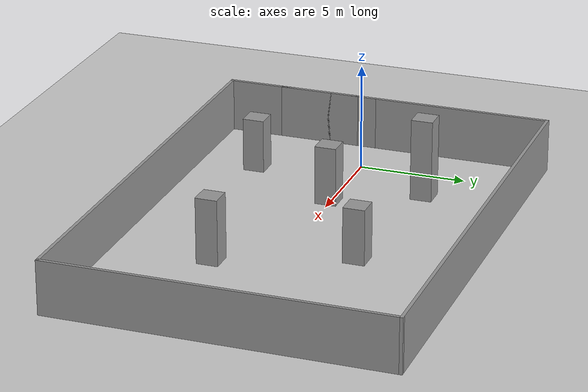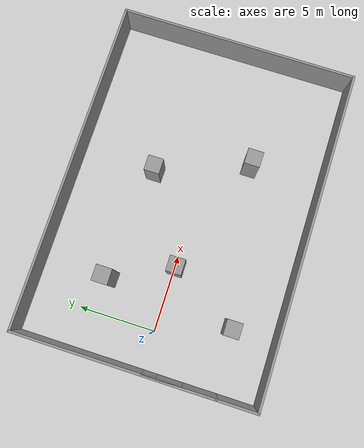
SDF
<sdf version="1.6">
 <world name="default">
  <light name="sun" type="directional">
   <pose>0 0 10 0 -0 0</pose>
   <diffuse>0.8 0.8 0.8 1</diffuse>
   <specular>0.2 0.2 0.2 1</specular>
   <attenuation>
    <range>1000</range>
    <constant>0.9</constant>
    <linear>0.01</linear>
    <quadratic>0.001</quadratic>
   </attenuation>
   <direction>-0.5 0.1 -0.9</direction>
  </light>
  <model name="ground_plane">
   <static>1</static>
   <link name="link">
    <collision name="collision">
     <geometry><plane><normal>0 0 1</normal><size>100 100</size></plane></geometry>
     <surface><friction><ode><mu>100</mu><mu2>50</mu2></ode></friction></surface>
    </collision>
    <visual name="visual">
     <cast_shadows>0</cast_shadows>
     <geometry><plane><normal>0 0 1</normal><size>100 100</size></plane></geometry>
     <material>
      <script><uri>file://media/materials/scripts/gazebo.material</uri><name>Gazebo/Grey</name></script>
     </material>
    </visual>
   </link>
  </model>
  <gravity>0 0 -9.8</gravity>
  <magnetic_field>6e-06 2.3e-05 -4.2e-05</magnetic_field>
  <atmosphere type="adiabatic"/>
  <physics name="default_physics" default="0" type="ode">
   <max_step_size>0.001</max_step_size>
   <real_time_factor>1</real_time_factor>
   <real_time_update_rate>1000</real_time_update_rate>
  </physics>
  <scene><ambient>0.4 0.4 0.4 1</ambient><background>0.7 0.7 0.7 1</background><shadows>1</shadows></scene>
  <spherical_coordinates>
   <surface_model>EARTH_WGS84</surface_model>
   <latitude_deg>0</latitude_deg>
   <longitude_deg>0</longitude_deg>
   <elevation>0</elevation>
   <heading_deg>0</heading_deg>
  </spherical_coordinates>
  <model name="unit_box">
   <pose>4.23918 -0.118952 1.38848 -1e-06 1e-06 -0.0001</pose>
   <link name="link">
    <inertial>
     <mass>1</mass>
     <inertia>
      <ixx>0.166667</ixx>
      <ixy>0</ixy>
      <ixz>0</ixz>
      <iyy>0.166667</iyy>
      <iyz>0</iyz>
      <izz>0.166667</izz>
     </inertia>
    </inertial>
    <collision name="collision"><geometry><box><size>1 1 2.77696</size></box></geometry></collision>
    <visual name="visual">
     <geometry><box><size>1 1 2.77696</size></box></geometry>
     <material>
      <script><name>Gazebo/Grey</name><uri>file://media/materials/scripts/gazebo.material</uri></script>
     </material>
    </visual>
   </link>
  </model>
  <model name="unit_box_0">
   <pose>2.32806 3.7886 1.93101 0 -1e-06 4e-06</pose>
   <link name="link">
    <inertial>
     <mass>1</mass>
     <inertia>
      <ixx>0.166667</ixx>
      <ixy>0</ixy>
      <ixz>0</ixz>
      <iyy>0.166667</iyy>
      <iyz>0</iyz>
      <izz>0.166667</izz>
     </inertia>
    </inertial>
    <collision name="collision"><geometry><box><size>1 1 3.86203</size></box></geometry></collision>
    <visual name="visual">
     <geometry><box><size>1 1 3.86203</size></box></geometry>
     <material>
      <script><name>Gazebo/Grey</name><uri>file://media/materials/scripts/gazebo.material</uri></script>
     </material>
    </visual>
   </link>
  </model>
  <model name="unit_box_1">
   <pose>1.6531 -4.5706 1.27006 -1e-06 -1e-06 -3e-05</pose>
   <link name="link">
    <inertial>
     <mass>1</mass>
     <inertia>
      <ixx>0.166667</ixx>
      <ixy>0</ixy>
      <ixz>0</ixz>
      <iyy>0.166667</iyy>
      <iyz>0</iyz>
      <izz>0.166667</izz>
     </inertia>
    </inertial>
    <collision name="collision"><geometry><box><size>1 1 2.54013</size></box></geometry></collision>
    <visual name="visual">
     <geometry><box><size>1 1 2.54013</size></box></geometry>
     <material>
      <script><name>Gazebo/Grey</name><uri>file://media/materials/scripts/gazebo.material</uri></script>
     </material>
    </visual>
   </link>
  </model>
  <model name="building1">
   <pose>8.405 0.4 0 0 -0 0</pose>
   <link name="Wall_0">
    <collision name="Wall_0_Collision">
     <geometry><box><size>3.25 0.15 2.5</size></box></geometry>
     <pose>0 0 1.25 0 -0 0</pose>
    </collision>
    <visual name="Wall_0_Visual">
     <pose>0 0 1.25 0 -0 0</pose>
     <geometry><box><size>3.25 0.15 2.5</size></box></geometry>
     <material>
      <script><uri>file://media/materials/scripts/gazebo.material</uri><name>Gazebo/Grey</name></script>
      <ambient>1 1 1 1</ambient>
     </material>
     <meta><layer>0</layer></meta>
    </visual>
    <pose>-10.925 -3.05 0 0 -0 -1.5708</pose>
   </link>
   <link name="Wall_1">
    <collision name="Wall_1_Collision">
     <geometry><box><size>0.75 0.15 2.5</size></box></geometry>
     <pose>0 0 1.25 0 -0 0</pose>
    </collision>
    <visual name="Wall_1_Visual">
     <pose>0 0 1.25 0 -0 0</pose>
     <geometry><box><size>0.75 0.15 2.5</size></box></geometry>
     <material>
      <script><uri>file://media/materials/scripts/gazebo.material</uri><name>Gazebo/Grey</name></script>
      <ambient>1 1 1 1</ambient>
     </material>
     <meta><layer>0</layer></meta>
    </visual>
    <pose>-10.925 -4.9 0 0 -0 -1.5708</pose>
   </link>
   <link name="Wall_2">
    <collision name="Wall_2_Collision">
     <geometry><box><size>4.75 0.15 2.5</size></box></geometry>
     <pose>0 0 1.25 0 -0 0</pose>
    </collision>
    <visual name="Wall_2_Visual">
     <pose>0 0 1.25 0 -0 0</pose>
     <geometry><box><size>4.75 0.15 2.5</size></box></geometry>
     <material>
      <script><uri>file://media/materials/scripts/gazebo.material</uri><name>Gazebo/Grey</name></script>
      <ambient>1 1 1 1</ambient>
     </material>
     <meta><layer>0</layer></meta>
    </visual>
    <pose>-10.925 -2.9 0 0 -0 1.5708</pose>
   </link>
   <link name="Wall_4">
    <collision name="Wall_4_Collision">
     <geometry><box><size>2.75 0.15 2.5</size></box></geometry>
     <pose>0 0 1.25 0 -0 0</pose>
    </collision>
    <visual name="Wall_4_Visual">
     <pose>0 0 1.25 0 -0 0</pose>
     <geometry><box><size>2.75 0.15 2.5</size></box></geometry>
     <material>
      <script><uri>file://media/materials/scripts/gazebo.material</uri><name>Gazebo/Grey</name></script>
      <ambient>1 1 1 1</ambient>
     </material>
     <meta><layer>0</layer></meta>
    </visual>
    <pose>-10.925 -6.5 0 0 -0 -1.5708</pose>
   </link>
   <link name="Wall_5">
    <collision name="Wall_5_Collision">
     <geometry><box><size>22 0.15 2.5</size></box></geometry>
     <pose>0 0 1.25 0 -0 0</pose>
    </collision>
    <visual name="Wall_5_Visual">
     <pose>0 0 1.25 0 -0 0</pose>
     <geometry><box><size>22 0.15 2.5</size></box></geometry>
     <material>
      <script><uri>file://media/materials/scripts/gazebo.material</uri><name>Gazebo/Grey</name></script>
      <ambient>1 1 1 1</ambient>
     </material>
     <meta><layer>0</layer></meta>
    </visual>
    <pose>-0 -7.8 0 0 -0 0</pose>
   </link>
   <link name="Wall_6">
    <collision name="Wall_6_Collision">
     <geometry><box><size>15.75 0.15 2.5</size></box></geometry>
     <pose>0 0 1.25 0 -0 0</pose>
    </collision>
    <visual name="Wall_6_Visual">
     <pose>0 0 1.25 0 -0 0</pose>
     <geometry><box><size>15.75 0.15 2.5</size></box></geometry>
     <material>
      <script><uri>file://media/materials/scripts/gazebo.material</uri><name>Gazebo/Grey</name></script>
      <ambient>1 1 1 1</ambient>
     </material>
     <meta><layer>0</layer></meta>
    </visual>
    <pose>10.925 0 0 0 -0 1.5708</pose>
   </link>
   <link name="Wall_7">
    <collision name="Wall_7_Collision">
     <geometry><box><size>22 0.15 2.5</size></box></geometry>
     <pose>0 0 1.25 0 -0 0</pose>
    </collision>
    <visual name="Wall_7_Visual">
     <pose>0 0 1.25 0 -0 0</pose>
     <geometry><box><size>22 0.15 2.5</size></box></geometry>
     <material>
      <script><uri>file://media/materials/scripts/gazebo.material</uri><name>Gazebo/Grey</name></script>
      <ambient>1 1 1 1</ambient>
     </material>
     <meta><layer>0</layer></meta>
    </visual>
    <pose>-0 7.8 0 0 -0 3.14159</pose>
   </link>
   <link name="Wall_8">
    <collision name="Wall_8_Collision">
     <geometry><box><size>9.75 0.15 2.5</size></box></geometry>
     <pose>0 0 1.25 0 -0 0</pose>
    </collision>
    <visual name="Wall_8_Visual">
     <pose>0 0 1.25 0 -0 0</pose>
     <geometry><box><size>9.75 0.15 2.5</size></box></geometry>
     <material>
      <script><uri>file://media/materials/scripts/gazebo.material</uri><name>Gazebo/Grey</name></script>
      <ambient>1 1 1 1</ambient>
     </material>
     <meta><layer>0</layer></meta>
    </visual>
    <pose>-10.925 3 0 0 -0 -1.5708</pose>
   </link>
   <static>1</static>
  </model>
  <model name="unit_box_2">
   <pose>9.84179 3.14104 1.29514 -1e-06 1e-06 8e-05</pose>
   <link name="link">
    <inertial>
     <mass>1</mass>
     <inertia>
      <ixx>0.166667</ixx>
      <ixy>0</ixy>
      <ixz>0</ixz>
      <iyy>0.166667</iyy>
      <iyz>0</iyz>
      <izz>0.166667</izz>
     </inertia>
    </inertial>
    <collision name="collision"><geometry><box><size>1 1 2.59029</size></box></geometry></collision>
    <visual name="visual">
     <geometry><box><size>1 1 2.59029</size></box></geometry>
     <material>
      <script><name>Gazebo/Grey</name><uri>file://media/materials/scripts/gazebo.material</uri></script>
     </material>
    </visual>
   </link>
  </model>
  <model name="unit_box_3">
   <pose>12.0346 -2.738 1.53406 0 -2e-06 -0.002895</pose>
   <link name="link">
    <inertial>
     <mass>1</mass>
     <inertia>
      <ixx>0.166667</ixx>
      <ixy>0</ixy>
      <ixz>0</ixz>
      <iyy>0.166667</iyy>
      <iyz>0</iyz>
      <izz>0.166667</izz>
     </inertia>
    </inertial>
    <collision name="collision"><geometry><box><size>1 1 3.06812</size></box></geometry></collision>
    <visual name="visual">
     <geometry><box><size>1 1 3.06812</size></box></geometry>
     <material>
      <script><name>Gazebo/Grey</name><uri>file://media/materials/scripts/gazebo.material</uri></script>
     </material>
    </visual>
   </link>
  </model>
 </world>
</sdf>
